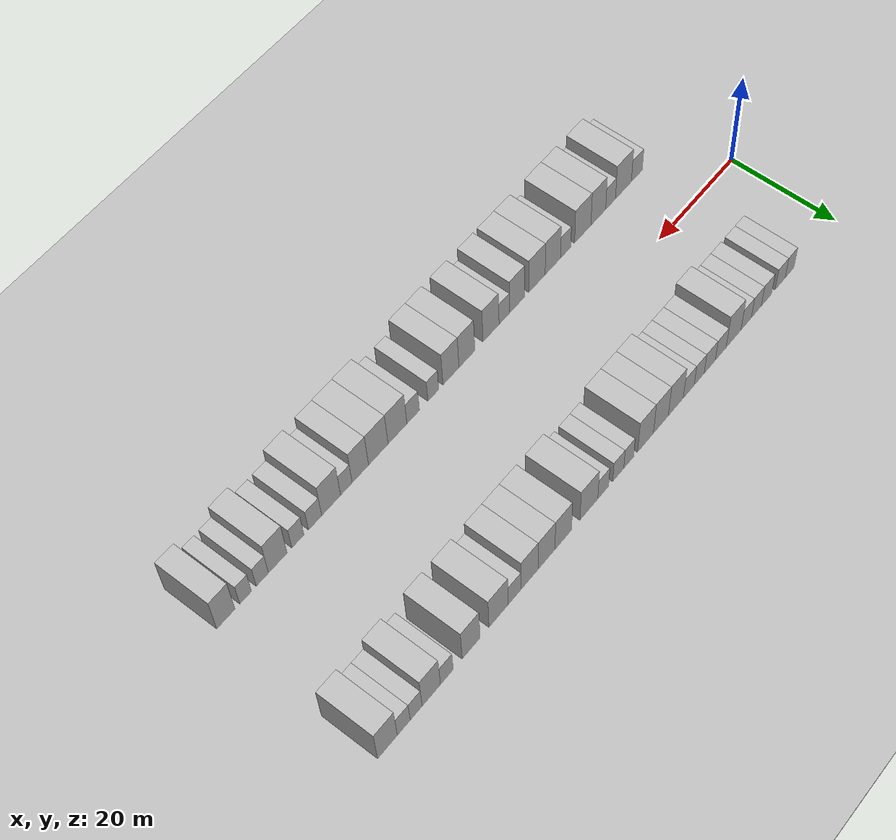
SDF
<sdf version="1.6">
 <world name="default">
  <include><name>ground_plane_1</name><uri>model://HANNAS_ground_plane</uri></include>
  <include>
   <name>ground_plane_2</name>
   <uri>model://HANNAS_ground_plane</uri>
   <pose>100 0 0  0 0 0</pose>
  </include>
  <model name="building_1">
   <static>1</static>
   <pose>13.2395 15.0000 0 0.000000 0.000000 1.570796</pose>
   <link name="link">
    <pose>0 0 3.00 0 0 0</pose>
    <collision name="collision"><geometry><box><size>10.0000 2.4789 6.0000</size></box></geometry></collision>
    <visual name="visual">
     <cast_shadows>0</cast_shadows>
     <geometry><box><size>10.0000 2.4789 6.0000</size></box></geometry>
     <material>
      <script>
       <uri>model://HANNAS_wall/materials/scripts</uri>
       <uri>model://HANNAS_wall/materials/textures</uri>
       <name>vrc/HANNAS_wall</name>
      </script>
     </material>
    </visual>
   </link>
  </model>
  <model name="building_2">
   <static>1</static>
   <pose>15.8671 15.0000 0 0.000000 0.000000 1.570796</pose>
   <link name="link">
    <pose>0 0 3.00 0 0 0</pose>
    <collision name="collision"><geometry><box><size>10.0000 2.7763 6.0000</size></box></geometry></collision>
    <visual name="visual">
     <cast_shadows>0</cast_shadows>
     <geometry><box><size>10.0000 2.7763 6.0000</size></box></geometry>
     <material>
      <script>
       <uri>model://HANNAS_wall/materials/scripts</uri>
       <uri>model://HANNAS_wall/materials/textures</uri>
       <name>vrc/HANNAS_wall</name>
      </script>
     </material>
    </visual>
   </link>
  </model>
  <model name="building_3">
   <static>1</static>
   <pose>19.6746 15.0000 0 0.000000 0.000000 1.570796</pose>
   <link name="link">
    <pose>0 0 3.00 0 0 0</pose>
    <collision name="collision"><geometry><box><size>10.0000 2.8389 6.0000</size></box></geometry></collision>
    <visual name="visual">
     <cast_shadows>0</cast_shadows>
     <geometry><box><size>10.0000 2.8389 6.0000</size></box></geometry>
     <material>
      <script>
       <uri>model://HANNAS_wall/materials/scripts</uri>
       <uri>model://HANNAS_wall/materials/textures</uri>
       <name>vrc/HANNAS_wall</name>
      </script>
     </material>
    </visual>
   </link>
  </model>
  <model name="building_4">
   <static>1</static>
   <pose>22.4632 15.0000 0 0.000000 0.000000 1.570796</pose>
   <link name="link">
    <pose>0 0 3.00 0 0 0</pose>
    <collision name="collision"><geometry><box><size>10.0000 2.7383 6.0000</size></box></geometry></collision>
    <visual name="visual">
     <cast_shadows>0</cast_shadows>
     <geometry><box><size>10.0000 2.7383 6.0000</size></box></geometry>
     <material>
      <script>
       <uri>model://HANNAS_wall/materials/scripts</uri>
       <uri>model://HANNAS_wall/materials/textures</uri>
       <name>vrc/HANNAS_wall</name>
      </script>
     </material>
    </visual>
   </link>
  </model>
  <model name="building_5">
   <static>1</static>
   <pose>25.2391 15.0000 0 0.000000 0.000000 1.570796</pose>
   <link name="link">
    <pose>0 0 3.00 0 0 0</pose>
    <collision name="collision"><geometry><box><size>10.0000 2.8134 6.0000</size></box></geometry></collision>
    <visual name="visual">
     <cast_shadows>0</cast_shadows>
     <geometry><box><size>10.0000 2.8134 6.0000</size></box></geometry>
     <material>
      <script>
       <uri>model://HANNAS_wall/materials/scripts</uri>
       <uri>model://HANNAS_wall/materials/textures</uri>
       <name>vrc/HANNAS_wall</name>
      </script>
     </material>
    </visual>
   </link>
  </model>
  <model name="building_6">
   <static>1</static>
   <pose>28.6374 15.0000 0 0.000000 0.000000 1.570796</pose>
   <link name="link">
    <pose>0 0 4.50 0 0 0</pose>
    <collision name="collision"><geometry><box><size>10.0000 3.9831 9.0000</size></box></geometry></collision>
    <visual name="visual">
     <cast_shadows>0</cast_shadows>
     <geometry><box><size>10.0000 3.9831 9.0000</size></box></geometry>
     <material>
      <script>
       <uri>model://HANNAS_wall/materials/scripts</uri>
       <uri>model://HANNAS_wall/materials/textures</uri>
       <name>vrc/HANNAS_wall</name>
      </script>
     </material>
    </visual>
   </link>
  </model>
  <model name="building_7">
   <static>1</static>
   <pose>32.0669 15.0000 0 0.000000 0.000000 1.570796</pose>
   <link name="link">
    <pose>0 0 3.00 0 0 0</pose>
    <collision name="collision"><geometry><box><size>10.0000 2.8759 6.0000</size></box></geometry></collision>
    <visual name="visual">
     <cast_shadows>0</cast_shadows>
     <geometry><box><size>10.0000 2.8759 6.0000</size></box></geometry>
     <material>
      <script>
       <uri>model://HANNAS_wall/materials/scripts</uri>
       <uri>model://HANNAS_wall/materials/textures</uri>
       <name>vrc/HANNAS_wall</name>
      </script>
     </material>
    </visual>
   </link>
  </model>
  <model name="building_8">
   <static>1</static>
   <pose>34.9849 15.0000 0 0.000000 0.000000 1.570796</pose>
   <link name="link">
    <pose>0 0 3.00 0 0 0</pose>
    <collision name="collision"><geometry><box><size>10.0000 2.9601 6.0000</size></box></geometry></collision>
    <visual name="visual">
     <cast_shadows>0</cast_shadows>
     <geometry><box><size>10.0000 2.9601 6.0000</size></box></geometry>
     <material>
      <script>
       <uri>model://HANNAS_wall/materials/scripts</uri>
       <uri>model://HANNAS_wall/materials/textures</uri>
       <name>vrc/HANNAS_wall</name>
      </script>
     </material>
    </visual>
   </link>
  </model>
  <model name="building_9">
   <static>1</static>
   <pose>37.7684 15.0000 0 0.000000 0.000000 1.570796</pose>
   <link name="link">
    <pose>0 0 3.00 0 0 0</pose>
    <collision name="collision"><geometry><box><size>10.0000 2.6069 6.0000</size></box></geometry></collision>
    <visual name="visual">
     <cast_shadows>0</cast_shadows>
     <geometry><box><size>10.0000 2.6069 6.0000</size></box></geometry>
     <material>
      <script>
       <uri>model://HANNAS_wall/materials/scripts</uri>
       <uri>model://HANNAS_wall/materials/textures</uri>
       <name>vrc/HANNAS_wall</name>
      </script>
     </material>
    </visual>
   </link>
  </model>
  <model name="building_10">
   <static>1</static>
   <pose>40.5030 15.0000 0 0.000000 0.000000 1.570796</pose>
   <link name="link">
    <pose>0 0 3.00 0 0 0</pose>
    <collision name="collision"><geometry><box><size>10.0000 2.8622 6.0000</size></box></geometry></collision>
    <visual name="visual">
     <cast_shadows>0</cast_shadows>
     <geometry><box><size>10.0000 2.8622 6.0000</size></box></geometry>
     <material>
      <script>
       <uri>model://HANNAS_wall/materials/scripts</uri>
       <uri>model://HANNAS_wall/materials/textures</uri>
       <name>vrc/HANNAS_wall</name>
      </script>
     </material>
    </visual>
   </link>
  </model>
  <model name="building_11">
   <static>1</static>
   <pose>43.8686 15.0000 0 0.000000 0.000000 1.570796</pose>
   <link name="link">
    <pose>0 0 4.50 0 0 0</pose>
    <collision name="collision"><geometry><box><size>10.0000 3.8690 9.0000</size></box></geometry></collision>
    <visual name="visual">
     <cast_shadows>0</cast_shadows>
     <geometry><box><size>10.0000 3.8690 9.0000</size></box></geometry>
     <material>
      <script>
       <uri>model://HANNAS_wall/materials/scripts</uri>
       <uri>model://HANNAS_wall/materials/textures</uri>
       <name>vrc/HANNAS_wall</name>
      </script>
     </material>
    </visual>
   </link>
  </model>
  <model name="building_12">
   <static>1</static>
   <pose>47.6986 15.0000 0 0.000000 0.000000 1.570796</pose>
   <link name="link">
    <pose>0 0 4.50 0 0 0</pose>
    <collision name="collision"><geometry><box><size>10.0000 3.7910 9.0000</size></box></geometry></collision>
    <visual name="visual">
     <cast_shadows>0</cast_shadows>
     <geometry><box><size>10.0000 3.7910 9.0000</size></box></geometry>
     <material>
      <script>
       <uri>model://HANNAS_wall/materials/scripts</uri>
       <uri>model://HANNAS_wall/materials/textures</uri>
       <name>vrc/HANNAS_wall</name>
      </script>
     </material>
    </visual>
   </link>
  </model>
  <model name="building_13">
   <static>1</static>
   <pose>51.5891 15.0000 0 0.000000 0.000000 1.570796</pose>
   <link name="link">
    <pose>0 0 4.50 0 0 0</pose>
    <collision name="collision"><geometry><box><size>10.0000 3.9900 9.0000</size></box></geometry></collision>
    <visual name="visual">
     <cast_shadows>0</cast_shadows>
     <geometry><box><size>10.0000 3.9900 9.0000</size></box></geometry>
     <material>
      <script>
       <uri>model://HANNAS_wall/materials/scripts</uri>
       <uri>model://HANNAS_wall/materials/textures</uri>
       <name>vrc/HANNAS_wall</name>
      </script>
     </material>
    </visual>
   </link>
  </model>
  <model name="building_14">
   <static>1</static>
   <pose>55.8028 15.0000 0 0.000000 0.000000 1.570796</pose>
   <link name="link">
    <pose>0 0 3.00 0 0 0</pose>
    <collision name="collision"><geometry><box><size>10.0000 2.4374 6.0000</size></box></geometry></collision>
    <visual name="visual">
     <cast_shadows>0</cast_shadows>
     <geometry><box><size>10.0000 2.4374 6.0000</size></box></geometry>
     <material>
      <script>
       <uri>model://HANNAS_wall/materials/scripts</uri>
       <uri>model://HANNAS_wall/materials/textures</uri>
       <name>vrc/HANNAS_wall</name>
      </script>
     </material>
    </visual>
   </link>
  </model>
  <model name="building_15">
   <static>1</static>
   <pose>58.3949 15.0000 0 0.000000 0.000000 1.570796</pose>
   <link name="link">
    <pose>0 0 3.00 0 0 0</pose>
    <collision name="collision"><geometry><box><size>10.0000 2.7468 6.0000</size></box></geometry></collision>
    <visual name="visual">
     <cast_shadows>0</cast_shadows>
     <geometry><box><size>10.0000 2.7468 6.0000</size></box></geometry>
     <material>
      <script>
       <uri>model://HANNAS_wall/materials/scripts</uri>
       <uri>model://HANNAS_wall/materials/textures</uri>
       <name>vrc/HANNAS_wall</name>
      </script>
     </material>
    </visual>
   </link>
  </model>
  <model name="building_16">
   <static>1</static>
   <pose>62.0917 15.0000 0 0.000000 0.000000 1.570796</pose>
   <link name="link">
    <pose>0 0 3.00 0 0 0</pose>
    <collision name="collision"><geometry><box><size>10.0000 2.6467 6.0000</size></box></geometry></collision>
    <visual name="visual">
     <cast_shadows>0</cast_shadows>
     <geometry><box><size>10.0000 2.6467 6.0000</size></box></geometry>
     <material>
      <script>
       <uri>model://HANNAS_wall/materials/scripts</uri>
       <uri>model://HANNAS_wall/materials/textures</uri>
       <name>vrc/HANNAS_wall</name>
      </script>
     </material>
    </visual>
   </link>
  </model>
  <model name="building_17">
   <static>1</static>
   <pose>65.5790 15.0000 0 0.000000 0.000000 1.570796</pose>
   <link name="link">
    <pose>0 0 4.50 0 0 0</pose>
    <collision name="collision"><geometry><box><size>10.0000 4.3279 9.0000</size></box></geometry></collision>
    <visual name="visual">
     <cast_shadows>0</cast_shadows>
     <geometry><box><size>10.0000 4.3279 9.0000</size></box></geometry>
     <material>
      <script>
       <uri>model://HANNAS_wall/materials/scripts</uri>
       <uri>model://HANNAS_wall/materials/textures</uri>
       <name>vrc/HANNAS_wall</name>
      </script>
     </material>
    </visual>
   </link>
  </model>
  <model name="building_18">
   <static>1</static>
   <pose>71.7157 15.0000 0 0.000000 0.000000 1.570796</pose>
   <link name="link">
    <pose>0 0 4.50 0 0 0</pose>
    <collision name="collision"><geometry><box><size>10.0000 3.9455 9.0000</size></box></geometry></collision>
    <visual name="visual">
     <cast_shadows>0</cast_shadows>
     <geometry><box><size>10.0000 3.9455 9.0000</size></box></geometry>
     <material>
      <script>
       <uri>model://HANNAS_wall/materials/scripts</uri>
       <uri>model://HANNAS_wall/materials/textures</uri>
       <name>vrc/HANNAS_wall</name>
      </script>
     </material>
    </visual>
   </link>
  </model>
  <model name="building_19">
   <static>1</static>
   <pose>75.6649 15.0000 0 0.000000 0.000000 1.570796</pose>
   <link name="link">
    <pose>0 0 4.50 0 0 0</pose>
    <collision name="collision"><geometry><box><size>10.0000 3.9529 9.0000</size></box></geometry></collision>
    <visual name="visual">
     <cast_shadows>0</cast_shadows>
     <geometry><box><size>10.0000 3.9529 9.0000</size></box></geometry>
     <material>
      <script>
       <uri>model://HANNAS_wall/materials/scripts</uri>
       <uri>model://HANNAS_wall/materials/textures</uri>
       <name>vrc/HANNAS_wall</name>
      </script>
     </material>
    </visual>
   </link>
  </model>
  <model name="building_20">
   <static>1</static>
   <pose>79.6231 15.0000 0 0.000000 0.000000 1.570796</pose>
   <link name="link">
    <pose>0 0 4.50 0 0 0</pose>
    <collision name="collision"><geometry><box><size>10.0000 3.9635 9.0000</size></box></geometry></collision>
    <visual name="visual">
     <cast_shadows>0</cast_shadows>
     <geometry><box><size>10.0000 3.9635 9.0000</size></box></geometry>
     <material>
      <script>
       <uri>model://HANNAS_wall/materials/scripts</uri>
       <uri>model://HANNAS_wall/materials/textures</uri>
       <name>vrc/HANNAS_wall</name>
      </script>
     </material>
    </visual>
   </link>
  </model>
  <model name="building_21">
   <static>1</static>
   <pose>83.0800 15.0000 0 0.000000 0.000000 1.570796</pose>
   <link name="link">
    <pose>0 0 3.00 0 0 0</pose>
    <collision name="collision"><geometry><box><size>10.0000 2.9503 6.0000</size></box></geometry></collision>
    <visual name="visual">
     <cast_shadows>0</cast_shadows>
     <geometry><box><size>10.0000 2.9503 6.0000</size></box></geometry>
     <material>
      <script>
       <uri>model://HANNAS_wall/materials/scripts</uri>
       <uri>model://HANNAS_wall/materials/textures</uri>
       <name>vrc/HANNAS_wall</name>
      </script>
     </material>
    </visual>
   </link>
  </model>
  <model name="building_22">
   <static>1</static>
   <pose>86.7415 15.0000 0 0.000000 0.000000 1.570796</pose>
   <link name="link">
    <pose>0 0 4.50 0 0 0</pose>
    <collision name="collision"><geometry><box><size>10.0000 4.3728 9.0000</size></box></geometry></collision>
    <visual name="visual">
     <cast_shadows>0</cast_shadows>
     <geometry><box><size>10.0000 4.3728 9.0000</size></box></geometry>
     <material>
      <script>
       <uri>model://HANNAS_wall/materials/scripts</uri>
       <uri>model://HANNAS_wall/materials/textures</uri>
       <name>vrc/HANNAS_wall</name>
      </script>
     </material>
    </visual>
   </link>
  </model>
  <model name="building_23">
   <static>1</static>
   <pose>92.9218 15.0000 0 0.000000 0.000000 1.570796</pose>
   <link name="link">
    <pose>0 0 4.50 0 0 0</pose>
    <collision name="collision"><geometry><box><size>10.0000 3.9877 9.0000</size></box></geometry></collision>
    <visual name="visual">
     <cast_shadows>0</cast_shadows>
     <geometry><box><size>10.0000 3.9877 9.0000</size></box></geometry>
     <material>
      <script>
       <uri>model://HANNAS_wall/materials/scripts</uri>
       <uri>model://HANNAS_wall/materials/textures</uri>
       <name>vrc/HANNAS_wall</name>
      </script>
     </material>
    </visual>
   </link>
  </model>
  <model name="building_24">
   <static>1</static>
   <pose>98.3099 15.0000 0 0.000000 0.000000 1.570796</pose>
   <link name="link">
    <pose>0 0 3.00 0 0 0</pose>
    <collision name="collision"><geometry><box><size>10.0000 2.7886 6.0000</size></box></geometry></collision>
    <visual name="visual">
     <cast_shadows>0</cast_shadows>
     <geometry><box><size>10.0000 2.7886 6.0000</size></box></geometry>
     <material>
      <script>
       <uri>model://HANNAS_wall/materials/scripts</uri>
       <uri>model://HANNAS_wall/materials/textures</uri>
       <name>vrc/HANNAS_wall</name>
      </script>
     </material>
    </visual>
   </link>
  </model>
  <model name="building_25">
   <static>1</static>
   <pose>101.6872 15.0000 0 0.000000 0.000000 1.570796</pose>
   <link name="link">
    <pose>0 0 4.50 0 0 0</pose>
    <collision name="collision"><geometry><box><size>10.0000 3.9659 9.0000</size></box></geometry></collision>
    <visual name="visual">
     <cast_shadows>0</cast_shadows>
     <geometry><box><size>10.0000 3.9659 9.0000</size></box></geometry>
     <material>
      <script>
       <uri>model://HANNAS_wall/materials/scripts</uri>
       <uri>model://HANNAS_wall/materials/textures</uri>
       <name>vrc/HANNAS_wall</name>
      </script>
     </material>
    </visual>
   </link>
  </model>
  <model name="building_26">
   <static>1</static>
   <pose>104.9479 15.0000 0 0.000000 0.000000 1.570796</pose>
   <link name="link">
    <pose>0 0 3.00 0 0 0</pose>
    <collision name="collision"><geometry><box><size>10.0000 2.5557 6.0000</size></box></geometry></collision>
    <visual name="visual">
     <cast_shadows>0</cast_shadows>
     <geometry><box><size>10.0000 2.5557 6.0000</size></box></geometry>
     <material>
      <script>
       <uri>model://HANNAS_wall/materials/scripts</uri>
       <uri>model://HANNAS_wall/materials/textures</uri>
       <name>vrc/HANNAS_wall</name>
      </script>
     </material>
    </visual>
   </link>
  </model>
  <model name="building_27">
   <static>1</static>
   <pose>107.5997 15.0000 0 0.000000 0.000000 1.570796</pose>
   <link name="link">
    <pose>0 0 3.00 0 0 0</pose>
    <collision name="collision"><geometry><box><size>10.0000 2.7478 6.0000</size></box></geometry></collision>
    <visual name="visual">
     <cast_shadows>0</cast_shadows>
     <geometry><box><size>10.0000 2.7478 6.0000</size></box></geometry>
     <material>
      <script>
       <uri>model://HANNAS_wall/materials/scripts</uri>
       <uri>model://HANNAS_wall/materials/textures</uri>
       <name>vrc/HANNAS_wall</name>
      </script>
     </material>
    </visual>
   </link>
  </model>
  <model name="building_28">
   <static>1</static>
   <pose>111.0488 15.0000 0 0.000000 0.000000 1.570796</pose>
   <link name="link">
    <pose>0 0 4.50 0 0 0</pose>
    <collision name="collision"><geometry><box><size>10.0000 4.1505 9.0000</size></box></geometry></collision>
    <visual name="visual">
     <cast_shadows>0</cast_shadows>
     <geometry><box><size>10.0000 4.1505 9.0000</size></box></geometry>
     <material>
      <script>
       <uri>model://HANNAS_wall/materials/scripts</uri>
       <uri>model://HANNAS_wall/materials/textures</uri>
       <name>vrc/HANNAS_wall</name>
      </script>
     </material>
    </visual>
   </link>
  </model>
  <model name="building_57">
   <static>1</static>
   <pose>12.4929 -15.0000 0 0.000000 0.000000 1.570796</pose>
   <link name="link">
    <pose>0 0 3.00 0 0 0</pose>
    <collision name="collision"><geometry><box><size>10.0000 2.9857 6.0000</size></box></geometry></collision>
    <visual name="visual">
     <cast_shadows>0</cast_shadows>
     <geometry><box><size>10.0000 2.9857 6.0000</size></box></geometry>
     <material>
      <script>
       <uri>model://HANNAS_wall/materials/scripts</uri>
       <uri>model://HANNAS_wall/materials/textures</uri>
       <name>vrc/HANNAS_wall</name>
      </script>
     </material>
    </visual>
   </link>
  </model>
  <model name="building_58">
   <static>1</static>
   <pose>16.1496 -15.0000 0 0.000000 0.000000 1.570796</pose>
   <link name="link">
    <pose>0 0 4.50 0 0 0</pose>
    <collision name="collision"><geometry><box><size>10.0000 4.3278 9.0000</size></box></geometry></collision>
    <visual name="visual">
     <cast_shadows>0</cast_shadows>
     <geometry><box><size>10.0000 4.3278 9.0000</size></box></geometry>
     <material>
      <script>
       <uri>model://HANNAS_wall/materials/scripts</uri>
       <uri>model://HANNAS_wall/materials/textures</uri>
       <name>vrc/HANNAS_wall</name>
      </script>
     </material>
    </visual>
   </link>
  </model>
  <model name="building_59">
   <static>1</static>
   <pose>19.6313 -15.0000 0 0.000000 0.000000 1.570796</pose>
   <link name="link">
    <pose>0 0 3.00 0 0 0</pose>
    <collision name="collision"><geometry><box><size>10.0000 2.6355 6.0000</size></box></geometry></collision>
    <visual name="visual">
     <cast_shadows>0</cast_shadows>
     <geometry><box><size>10.0000 2.6355 6.0000</size></box></geometry>
     <material>
      <script>
       <uri>model://HANNAS_wall/materials/scripts</uri>
       <uri>model://HANNAS_wall/materials/textures</uri>
       <name>vrc/HANNAS_wall</name>
      </script>
     </material>
    </visual>
   </link>
  </model>
  <model name="building_60">
   <static>1</static>
   <pose>22.9120 -15.0000 0 0.000000 0.000000 1.570796</pose>
   <link name="link">
    <pose>0 0 4.50 0 0 0</pose>
    <collision name="collision"><geometry><box><size>10.0000 3.9260 9.0000</size></box></geometry></collision>
    <visual name="visual">
     <cast_shadows>0</cast_shadows>
     <geometry><box><size>10.0000 3.9260 9.0000</size></box></geometry>
     <material>
      <script>
       <uri>model://HANNAS_wall/materials/scripts</uri>
       <uri>model://HANNAS_wall/materials/textures</uri>
       <name>vrc/HANNAS_wall</name>
      </script>
     </material>
    </visual>
   </link>
  </model>
  <model name="building_61">
   <static>1</static>
   <pose>27.0262 -15.0000 0 0.000000 0.000000 1.570796</pose>
   <link name="link">
    <pose>0 0 4.50 0 0 0</pose>
    <collision name="collision"><geometry><box><size>10.0000 4.3025 9.0000</size></box></geometry></collision>
    <visual name="visual">
     <cast_shadows>0</cast_shadows>
     <geometry><box><size>10.0000 4.3025 9.0000</size></box></geometry>
     <material>
      <script>
       <uri>model://HANNAS_wall/materials/scripts</uri>
       <uri>model://HANNAS_wall/materials/textures</uri>
       <name>vrc/HANNAS_wall</name>
      </script>
     </material>
    </visual>
   </link>
  </model>
  <model name="building_62">
   <static>1</static>
   <pose>31.5069 -15.0000 0 0.000000 0.000000 1.570796</pose>
   <link name="link">
    <pose>0 0 3.00 0 0 0</pose>
    <collision name="collision"><geometry><box><size>10.0000 2.6589 6.0000</size></box></geometry></collision>
    <visual name="visual">
     <cast_shadows>0</cast_shadows>
     <geometry><box><size>10.0000 2.6589 6.0000</size></box></geometry>
     <material>
      <script>
       <uri>model://HANNAS_wall/materials/scripts</uri>
       <uri>model://HANNAS_wall/materials/textures</uri>
       <name>vrc/HANNAS_wall</name>
      </script>
     </material>
    </visual>
   </link>
  </model>
  <model name="building_63">
   <static>1</static>
   <pose>34.8278 -15.0000 0 0.000000 0.000000 1.570796</pose>
   <link name="link">
    <pose>0 0 4.50 0 0 0</pose>
    <collision name="collision"><geometry><box><size>10.0000 3.9829 9.0000</size></box></geometry></collision>
    <visual name="visual">
     <cast_shadows>0</cast_shadows>
     <geometry><box><size>10.0000 3.9829 9.0000</size></box></geometry>
     <material>
      <script>
       <uri>model://HANNAS_wall/materials/scripts</uri>
       <uri>model://HANNAS_wall/materials/textures</uri>
       <name>vrc/HANNAS_wall</name>
      </script>
     </material>
    </visual>
   </link>
  </model>
  <model name="building_64">
   <static>1</static>
   <pose>38.9074 -15.0000 0 0.000000 0.000000 1.570796</pose>
   <link name="link">
    <pose>0 0 4.50 0 0 0</pose>
    <collision name="collision"><geometry><box><size>10.0000 4.1764 9.0000</size></box></geometry></collision>
    <visual name="visual">
     <cast_shadows>0</cast_shadows>
     <geometry><box><size>10.0000 4.1764 9.0000</size></box></geometry>
     <material>
      <script>
       <uri>model://HANNAS_wall/materials/scripts</uri>
       <uri>model://HANNAS_wall/materials/textures</uri>
       <name>vrc/HANNAS_wall</name>
      </script>
     </material>
    </visual>
   </link>
  </model>
  <model name="building_65">
   <static>1</static>
   <pose>43.9130 -15.0000 0 0.000000 0.000000 1.570796</pose>
   <link name="link">
    <pose>0 0 4.50 0 0 0</pose>
    <collision name="collision"><geometry><box><size>10.0000 3.8349 9.0000</size></box></geometry></collision>
    <visual name="visual">
     <cast_shadows>0</cast_shadows>
     <geometry><box><size>10.0000 3.8349 9.0000</size></box></geometry>
     <material>
      <script>
       <uri>model://HANNAS_wall/materials/scripts</uri>
       <uri>model://HANNAS_wall/materials/textures</uri>
       <name>vrc/HANNAS_wall</name>
      </script>
     </material>
    </visual>
   </link>
  </model>
  <model name="building_66">
   <static>1</static>
   <pose>47.1472 -15.0000 0 0.000000 0.000000 1.570796</pose>
   <link name="link">
    <pose>0 0 3.00 0 0 0</pose>
    <collision name="collision"><geometry><box><size>10.0000 2.6333 6.0000</size></box></geometry></collision>
    <visual name="visual">
     <cast_shadows>0</cast_shadows>
     <geometry><box><size>10.0000 2.6333 6.0000</size></box></geometry>
     <material>
      <script>
       <uri>model://HANNAS_wall/materials/scripts</uri>
       <uri>model://HANNAS_wall/materials/textures</uri>
       <name>vrc/HANNAS_wall</name>
      </script>
     </material>
    </visual>
   </link>
  </model>
  <model name="building_67">
   <static>1</static>
   <pose>50.4509 -15.0000 0 0.000000 0.000000 1.570796</pose>
   <link name="link">
    <pose>0 0 4.50 0 0 0</pose>
    <collision name="collision"><geometry><box><size>10.0000 3.9741 9.0000</size></box></geometry></collision>
    <visual name="visual">
     <cast_shadows>0</cast_shadows>
     <geometry><box><size>10.0000 3.9741 9.0000</size></box></geometry>
     <material>
      <script>
       <uri>model://HANNAS_wall/materials/scripts</uri>
       <uri>model://HANNAS_wall/materials/textures</uri>
       <name>vrc/HANNAS_wall</name>
      </script>
     </material>
    </visual>
   </link>
  </model>
  <model name="building_68">
   <static>1</static>
   <pose>56.3615 -15.0000 0 0.000000 0.000000 1.570796</pose>
   <link name="link">
    <pose>0 0 4.50 0 0 0</pose>
    <collision name="collision"><geometry><box><size>10.0000 3.8473 9.0000</size></box></geometry></collision>
    <visual name="visual">
     <cast_shadows>0</cast_shadows>
     <geometry><box><size>10.0000 3.8473 9.0000</size></box></geometry>
     <material>
      <script>
       <uri>model://HANNAS_wall/materials/scripts</uri>
       <uri>model://HANNAS_wall/materials/textures</uri>
       <name>vrc/HANNAS_wall</name>
      </script>
     </material>
    </visual>
   </link>
  </model>
  <model name="building_69">
   <static>1</static>
   <pose>60.2088 -15.0000 0 0.000000 0.000000 1.570796</pose>
   <link name="link">
    <pose>0 0 4.50 0 0 0</pose>
    <collision name="collision"><geometry><box><size>10.0000 3.8472 9.0000</size></box></geometry></collision>
    <visual name="visual">
     <cast_shadows>0</cast_shadows>
     <geometry><box><size>10.0000 3.8472 9.0000</size></box></geometry>
     <material>
      <script>
       <uri>model://HANNAS_wall/materials/scripts</uri>
       <uri>model://HANNAS_wall/materials/textures</uri>
       <name>vrc/HANNAS_wall</name>
      </script>
     </material>
    </visual>
   </link>
  </model>
  <model name="building_70">
   <static>1</static>
   <pose>64.4255 -15.0000 0 0.000000 0.000000 1.570796</pose>
   <link name="link">
    <pose>0 0 3.00 0 0 0</pose>
    <collision name="collision"><geometry><box><size>10.0000 2.5862 6.0000</size></box></geometry></collision>
    <visual name="visual">
     <cast_shadows>0</cast_shadows>
     <geometry><box><size>10.0000 2.5862 6.0000</size></box></geometry>
     <material>
      <script>
       <uri>model://HANNAS_wall/materials/scripts</uri>
       <uri>model://HANNAS_wall/materials/textures</uri>
       <name>vrc/HANNAS_wall</name>
      </script>
     </material>
    </visual>
   </link>
  </model>
  <model name="building_71">
   <static>1</static>
   <pose>69.1929 -15.0000 0 0.000000 0.000000 1.570796</pose>
   <link name="link">
    <pose>0 0 3.00 0 0 0</pose>
    <collision name="collision"><geometry><box><size>10.0000 2.9484 6.0000</size></box></geometry></collision>
    <visual name="visual">
     <cast_shadows>0</cast_shadows>
     <geometry><box><size>10.0000 2.9484 6.0000</size></box></geometry>
     <material>
      <script>
       <uri>model://HANNAS_wall/materials/scripts</uri>
       <uri>model://HANNAS_wall/materials/textures</uri>
       <name>vrc/HANNAS_wall</name>
      </script>
     </material>
    </visual>
   </link>
  </model>
  <model name="building_72">
   <static>1</static>
   <pose>72.8483 -15.0000 0 0.000000 0.000000 1.570796</pose>
   <link name="link">
    <pose>0 0 4.50 0 0 0</pose>
    <collision name="collision"><geometry><box><size>10.0000 4.3624 9.0000</size></box></geometry></collision>
    <visual name="visual">
     <cast_shadows>0</cast_shadows>
     <geometry><box><size>10.0000 4.3624 9.0000</size></box></geometry>
     <material>
      <script>
       <uri>model://HANNAS_wall/materials/scripts</uri>
       <uri>model://HANNAS_wall/materials/textures</uri>
       <name>vrc/HANNAS_wall</name>
      </script>
     </material>
    </visual>
   </link>
  </model>
  <model name="building_73">
   <static>1</static>
   <pose>77.2621 -15.0000 0 0.000000 0.000000 1.570796</pose>
   <link name="link">
    <pose>0 0 4.50 0 0 0</pose>
    <collision name="collision"><geometry><box><size>10.0000 4.4651 9.0000</size></box></geometry></collision>
    <visual name="visual">
     <cast_shadows>0</cast_shadows>
     <geometry><box><size>10.0000 4.4651 9.0000</size></box></geometry>
     <material>
      <script>
       <uri>model://HANNAS_wall/materials/scripts</uri>
       <uri>model://HANNAS_wall/materials/textures</uri>
       <name>vrc/HANNAS_wall</name>
      </script>
     </material>
    </visual>
   </link>
  </model>
  <model name="building_74">
   <static>1</static>
   <pose>81.3480 -15.0000 0 0.000000 0.000000 1.570796</pose>
   <link name="link">
    <pose>0 0 4.50 0 0 0</pose>
    <collision name="collision"><geometry><box><size>10.0000 3.7068 9.0000</size></box></geometry></collision>
    <visual name="visual">
     <cast_shadows>0</cast_shadows>
     <geometry><box><size>10.0000 3.7068 9.0000</size></box></geometry>
     <material>
      <script>
       <uri>model://HANNAS_wall/materials/scripts</uri>
       <uri>model://HANNAS_wall/materials/textures</uri>
       <name>vrc/HANNAS_wall</name>
      </script>
     </material>
    </visual>
   </link>
  </model>
  <model name="building_75">
   <static>1</static>
   <pose>84.4976 -15.0000 0 0.000000 0.000000 1.570796</pose>
   <link name="link">
    <pose>0 0 3.00 0 0 0</pose>
    <collision name="collision"><geometry><box><size>10.0000 2.5924 6.0000</size></box></geometry></collision>
    <visual name="visual">
     <cast_shadows>0</cast_shadows>
     <geometry><box><size>10.0000 2.5924 6.0000</size></box></geometry>
     <material>
      <script>
       <uri>model://HANNAS_wall/materials/scripts</uri>
       <uri>model://HANNAS_wall/materials/textures</uri>
       <name>vrc/HANNAS_wall</name>
      </script>
     </material>
    </visual>
   </link>
  </model>
  <model name="building_76">
   <static>1</static>
   <pose>87.8868 -15.0000 0 0.000000 0.000000 1.570796</pose>
   <link name="link">
    <pose>0 0 4.50 0 0 0</pose>
    <collision name="collision"><geometry><box><size>10.0000 4.1861 9.0000</size></box></geometry></collision>
    <visual name="visual">
     <cast_shadows>0</cast_shadows>
     <geometry><box><size>10.0000 4.1861 9.0000</size></box></geometry>
     <material>
      <script>
       <uri>model://HANNAS_wall/materials/scripts</uri>
       <uri>model://HANNAS_wall/materials/textures</uri>
       <name>vrc/HANNAS_wall</name>
      </script>
     </material>
    </visual>
   </link>
  </model>
  <model name="building_77">
   <static>1</static>
   <pose>91.4316 -15.0000 0 0.000000 0.000000 1.570796</pose>
   <link name="link">
    <pose>0 0 3.00 0 0 0</pose>
    <collision name="collision"><geometry><box><size>10.0000 2.9036 6.0000</size></box></geometry></collision>
    <visual name="visual">
     <cast_shadows>0</cast_shadows>
     <geometry><box><size>10.0000 2.9036 6.0000</size></box></geometry>
     <material>
      <script>
       <uri>model://HANNAS_wall/materials/scripts</uri>
       <uri>model://HANNAS_wall/materials/textures</uri>
       <name>vrc/HANNAS_wall</name>
      </script>
     </material>
    </visual>
   </link>
  </model>
  <model name="building_78">
   <static>1</static>
   <pose>95.1997 -15.0000 0 0.000000 0.000000 1.570796</pose>
   <link name="link">
    <pose>0 0 3.00 0 0 0</pose>
    <collision name="collision"><geometry><box><size>10.0000 2.6324 6.0000</size></box></geometry></collision>
    <visual name="visual">
     <cast_shadows>0</cast_shadows>
     <geometry><box><size>10.0000 2.6324 6.0000</size></box></geometry>
     <material>
      <script>
       <uri>model://HANNAS_wall/materials/scripts</uri>
       <uri>model://HANNAS_wall/materials/textures</uri>
       <name>vrc/HANNAS_wall</name>
      </script>
     </material>
    </visual>
   </link>
  </model>
  <model name="building_79">
   <static>1</static>
   <pose>99.5191 -15.0000 0 0.000000 0.000000 1.570796</pose>
   <link name="link">
    <pose>0 0 4.50 0 0 0</pose>
    <collision name="collision"><geometry><box><size>10.0000 4.0065 9.0000</size></box></geometry></collision>
    <visual name="visual">
     <cast_shadows>0</cast_shadows>
     <geometry><box><size>10.0000 4.0065 9.0000</size></box></geometry>
     <material>
      <script>
       <uri>model://HANNAS_wall/materials/scripts</uri>
       <uri>model://HANNAS_wall/materials/textures</uri>
       <name>vrc/HANNAS_wall</name>
      </script>
     </material>
    </visual>
   </link>
  </model>
  <model name="building_80">
   <static>1</static>
   <pose>102.8232 -15.0000 0 0.000000 0.000000 1.570796</pose>
   <link name="link">
    <pose>0 0 3.00 0 0 0</pose>
    <collision name="collision"><geometry><box><size>10.0000 2.6016 6.0000</size></box></geometry></collision>
    <visual name="visual">
     <cast_shadows>0</cast_shadows>
     <geometry><box><size>10.0000 2.6016 6.0000</size></box></geometry>
     <material>
      <script>
       <uri>model://HANNAS_wall/materials/scripts</uri>
       <uri>model://HANNAS_wall/materials/textures</uri>
       <name>vrc/HANNAS_wall</name>
      </script>
     </material>
    </visual>
   </link>
  </model>
  <model name="building_81">
   <static>1</static>
   <pose>106.3560 -15.0000 0 0.000000 0.000000 1.570796</pose>
   <link name="link">
    <pose>0 0 3.00 0 0 0</pose>
    <collision name="collision"><geometry><box><size>10.0000 2.4640 6.0000</size></box></geometry></collision>
    <visual name="visual">
     <cast_shadows>0</cast_shadows>
     <geometry><box><size>10.0000 2.4640 6.0000</size></box></geometry>
     <material>
      <script>
       <uri>model://HANNAS_wall/materials/scripts</uri>
       <uri>model://HANNAS_wall/materials/textures</uri>
       <name>vrc/HANNAS_wall</name>
      </script>
     </material>
    </visual>
   </link>
  </model>
  <model name="building_82">
   <static>1</static>
   <pose>110.4822 -15.0000 0 0.000000 0.000000 1.570796</pose>
   <link name="link">
    <pose>0 0 4.50 0 0 0</pose>
    <collision name="collision"><geometry><box><size>10.0000 3.7885 9.0000</size></box></geometry></collision>
    <visual name="visual">
     <cast_shadows>0</cast_shadows>
     <geometry><box><size>10.0000 3.7885 9.0000</size></box></geometry>
     <material>
      <script>
       <uri>model://HANNAS_wall/materials/scripts</uri>
       <uri>model://HANNAS_wall/materials/textures</uri>
       <name>vrc/HANNAS_wall</name>
      </script>
     </material>
    </visual>
   </link>
  </model>
 </world>
</sdf>
